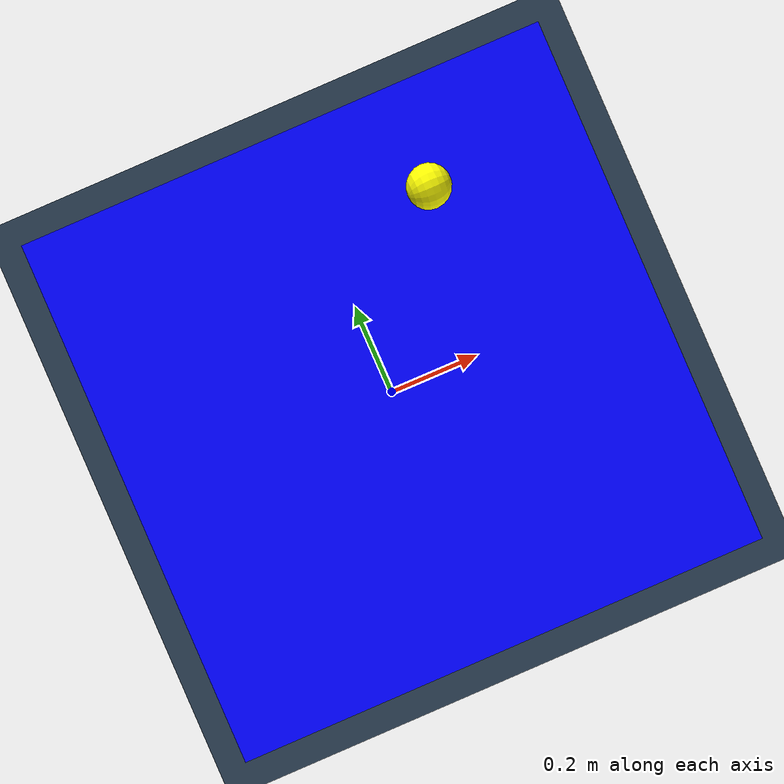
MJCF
<mujoco model="dual-panda v01">
    <asset>
        <texture name="texplane" type="2d" builtin="checker" rgb1=".2 .3 .4" rgb2=".1 0.15 0.2"
                width="512" height="512"/>
        <material name="MatGnd" reflectance="0.5" texture="texplane" texrepeat="1 1" texuniform="true"/>
    </asset>
    <!-- change this for different objects -->

<compiler meshdir="" />

    <option noslip_iterations="50" />
    <option solver="Newton" iterations="100" tolerance="1e-5"/>

    <option cone="elliptic"> </option>
    <option><flag multiccd="enable"/> </option>
    <worldbody>
        <light directional="false" diffuse=".8 .8 .8" specular="0.3 0.3 0.3" pos="1  1 3" dir="-1 -1 -3"/>
        <light directional="false" diffuse=".8 .8 .8" specular="0.3 0.3 0.3" pos="1 -1 3" dir="-1 1 -3"/>
        <light directional="false" diffuse=".8 .8 .8" specular="0.3 0.3 0.3" pos="-1 0 3" dir="1 0 -3" />
        <geom name="ground" pos="0 0 0" size="5 5 10" material="MatGnd" type="plane" contype="1" conaffinity="1"/>

        <body name="collision_object" pos="0.0 0 0.3" quat="1 0 0 0">
            <joint type="hinge" name="object_virtual_joint" pos="0.0 0.0 0.0" axis="1 0 0" damping="1" />
            <joint type="hinge" name="object_virtual_joint_y" pos="0.0 0.0 0.0" axis="0 1 0" damping="1" />
            <geom type="box" size="0.5 0.5 0.01" rgba="0 0 1 1 " friction="0 00 00.0" />
            <inertial pos="0 0 0" mass="2" diaginertia="0.03013 0.08413 0.11333" />
        </body>

        <body name="cylinder_body" pos=".2 0.3 0.35" quat="0 0.7071068 0 0.7071068">

            <joint type="free" />

            <geom type="sphere" size="0.04 0.04 0.04" rgba="1 1 0 1" friction="1000 1000 1000.0"/>
            <inertial pos="0 0 0" mass="1" diaginertia="0.024 0.024 0.0136"/>
        </body>
        <body name="marker" mocap="true">
            <geom type="box" size=".05 .05 .05" contype="0" conaffinity="0" rgba=".6 .3 .3 0.5"/>
            <site type="sphere" size="0.01" rgba="0 0 1 0" group="1"/>
        </body>

    </worldbody>

    <actuator>
        <position ctrllimited="true" ctrlrange="-2 2" joint="object_virtual_joint" kp="10"/>
        <position ctrllimited="true" ctrlrange="-2 2" joint="object_virtual_joint_y" kp="10"/>
    </actuator>
</mujoco>
